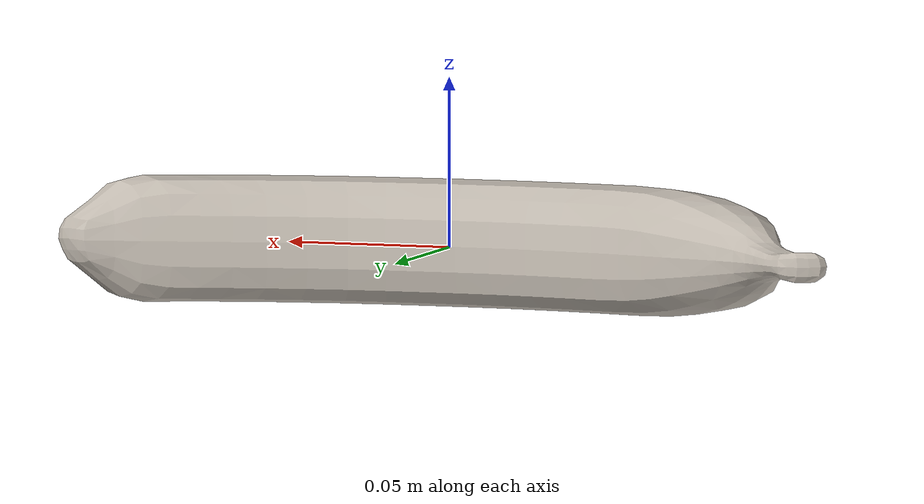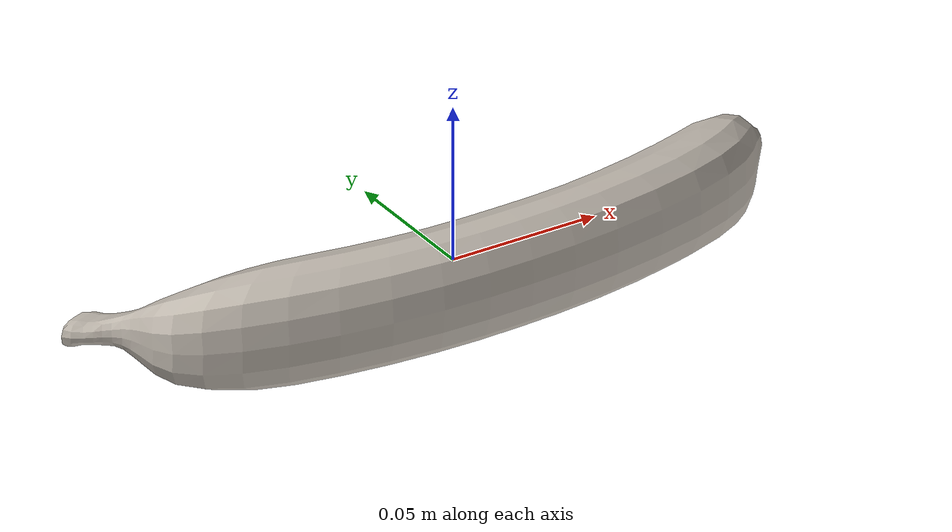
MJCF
<mujoco model="banana_5e68fc39">
  <compiler angle="radian"/>
  <asset>
    <texture type="2d" name="banana_5e68fc39_tex" file="banana_5e68fc39_visual_0.png"/>
    <material name="banana_5e68fc39_mat" texture="banana_5e68fc39_tex"/>
    <mesh name="banana_5e68fc39_visual" content_type="model/obj" file="banana_5e68fc39_visual.obj" scale="-2.33927 1 1.78883"/>
    <mesh name="banana_5e68fc39_c0" content_type="model/obj" file="banana_5e68fc39_c0.obj" scale="-2.33927 1 1.78883"/>
    <mesh name="banana_5e68fc39_c1" content_type="model/obj" file="banana_5e68fc39_c1.obj" scale="-2.33927 1 1.78883"/>
    <mesh name="banana_5e68fc39_c2" content_type="model/obj" file="banana_5e68fc39_c2.obj" scale="-2.33927 1 1.78883"/>
  </asset>
  <worldbody>
    <body name="banana_5e68fc39">
      <freejoint/>
      <geom name="banana_5e68fc39_visual" type="mesh" mesh="banana_5e68fc39_visual" mass="1e-8" contype="0" conaffinity="0" group="2" material="banana_5e68fc39_mat"/>
      <geom name="banana_5e68fc39_c0" type="mesh" mesh="banana_5e68fc39_c0" group="3" density="741.751" friction="0.9 0.05 0.005" condim="4" rgba="0.4 0.5 0.9 0.35"/>
      <geom name="banana_5e68fc39_c1" type="mesh" mesh="banana_5e68fc39_c1" group="3" density="741.751" friction="0.9 0.05 0.005" condim="4" rgba="0.4 0.5 0.9 0.35"/>
      <geom name="banana_5e68fc39_c2" type="mesh" mesh="banana_5e68fc39_c2" group="3" density="741.751" friction="0.9 0.05 0.005" condim="4" rgba="0.4 0.5 0.9 0.35"/>
    </body>
  </worldbody>
</mujoco>
